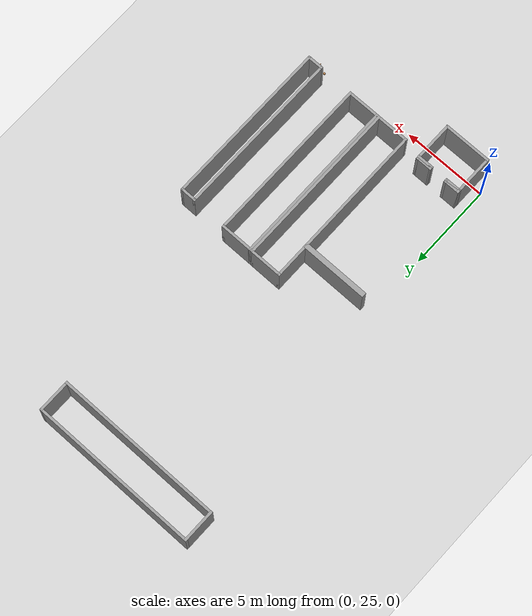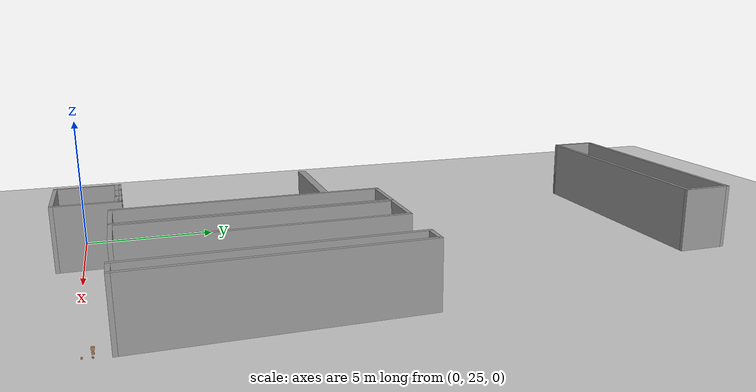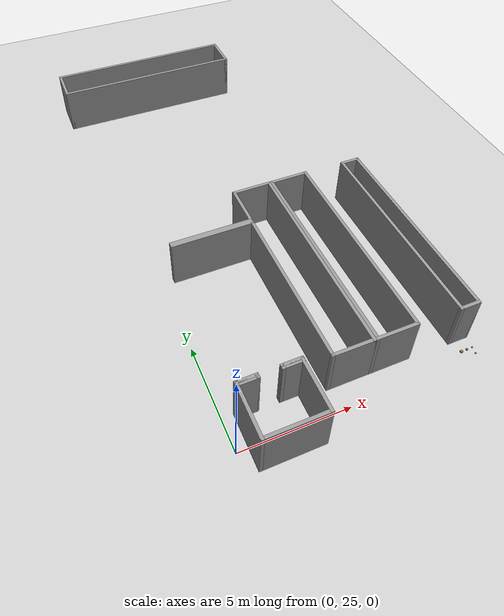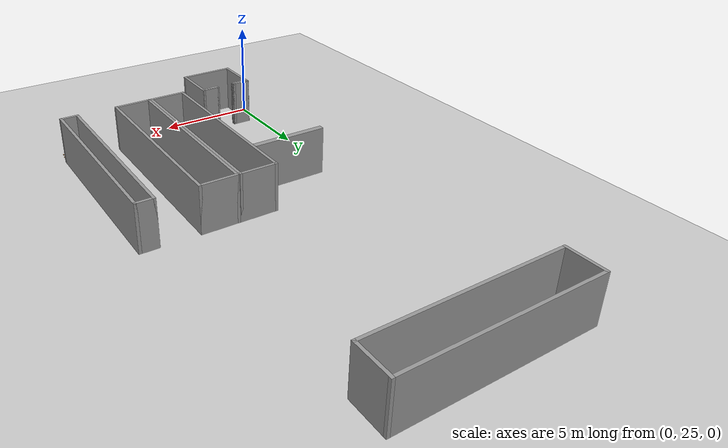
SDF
<sdf version="1.6">
 <world name="default">
  <model name="ground_plane">
   <static>1</static>
   <link name="link">
    <collision name="collision">
     <geometry><plane><normal>0 0 1</normal><size>105 105</size></plane></geometry>
     <surface>
      <contact><collide_bitmask>65535</collide_bitmask></contact>
      <friction><ode><mu>100</mu><mu2>50</mu2></ode></friction>
     </surface>
    </collision>
    <visual name="visual">
     <cast_shadows>0</cast_shadows>
     <geometry><plane><normal>0 0 1</normal><size>105 105</size></plane></geometry>
     <material>
      <script><uri>file://media/materials/scripts/gazebo.material</uri><name>Gazebo/Grey</name></script>
     </material>
    </visual>
   </link>
  </model>
  <model name="base10x2_0">
   <pose>5.40521 31.0336 0 0 -0 0</pose>
   <link name="Wall_20">
    <collision name="Wall_20_Collision">
     <geometry><box><size>2 0.15 2.5</size></box></geometry>
     <pose>0 0 1.25 0 -0 0</pose>
    </collision>
    <visual name="Wall_20_Visual">
     <pose>0 0 1.25 0 -0 0</pose>
     <geometry><box><size>2 0.15 2.5</size></box></geometry>
     <material>
      <script><uri>file://media/materials/scripts/gazebo.material</uri><name>Gazebo/Grey</name></script>
      <ambient>1 1 1 1</ambient>
     </material>
     <meta><layer>0</layer></meta>
    </visual>
    <pose>0 4.925 0 0 -0 0</pose>
   </link>
   <link name="Wall_21">
    <collision name="Wall_21_Collision">
     <geometry><box><size>10 0.15 2.5</size></box></geometry>
     <pose>0 0 1.25 0 -0 0</pose>
    </collision>
    <visual name="Wall_21_Visual">
     <pose>0 0 1.25 0 -0 0</pose>
     <geometry><box><size>10 0.15 2.5</size></box></geometry>
     <material>
      <script><uri>file://media/materials/scripts/gazebo.material</uri><name>Gazebo/Grey</name></script>
      <ambient>1 1 1 1</ambient>
     </material>
     <meta><layer>0</layer></meta>
    </visual>
    <pose>0.925 -0 0 0 -0 -1.5708</pose>
   </link>
   <link name="Wall_22">
    <collision name="Wall_22_Collision">
     <geometry><box><size>2 0.15 2.5</size></box></geometry>
     <pose>0 0 1.25 0 -0 0</pose>
    </collision>
    <visual name="Wall_22_Visual">
     <pose>0 0 1.25 0 -0 0</pose>
     <geometry><box><size>2 0.15 2.5</size></box></geometry>
     <material>
      <script><uri>file://media/materials/scripts/gazebo.material</uri><name>Gazebo/Grey</name></script>
      <ambient>1 1 1 1</ambient>
     </material>
     <meta><layer>0</layer></meta>
    </visual>
    <pose>0 -4.925 0 0 -0 3.14159</pose>
   </link>
   <link name="Wall_23">
    <collision name="Wall_23_Collision">
     <geometry><box><size>10 0.15 2.5</size></box></geometry>
     <pose>0 0 1.25 0 -0 0</pose>
    </collision>
    <visual name="Wall_23_Visual">
     <pose>0 0 1.25 0 -0 0</pose>
     <geometry><box><size>10 0.15 2.5</size></box></geometry>
     <material>
      <script><uri>file://media/materials/scripts/gazebo.material</uri><name>Gazebo/Grey</name></script>
      <ambient>1 1 1 1</ambient>
     </material>
     <meta><layer>0</layer></meta>
    </visual>
    <pose>-0.925 -0 0 0 -0 1.5708</pose>
   </link>
   <static>1</static>
  </model>
  <model name="base10x1">
   <pose>10.8397 30.9726 0 0 -0 0</pose>
   <link name="Wall_15">
    <collision name="Wall_15_Collision">
     <geometry><box><size>10 0.15 2.5</size></box></geometry>
     <pose>0 0 1.25 0 -0 0</pose>
    </collision>
    <visual name="Wall_15_Visual">
     <pose>0 0 1.25 0 -0 0</pose>
     <geometry><box><size>10 0.15 2.5</size></box></geometry>
     <material>
      <script><uri>file://media/materials/scripts/gazebo.material</uri><name>Gazebo/Grey</name></script>
      <ambient>1 1 1 1</ambient>
     </material>
     <meta><layer>0</layer></meta>
    </visual>
    <pose>-0.425 0 0 0 -0 1.5708</pose>
   </link>
   <link name="Wall_16">
    <collision name="Wall_16_Collision">
     <geometry><box><size>1 0.15 2.5</size></box></geometry>
     <pose>0 0 1.25 0 -0 0</pose>
    </collision>
    <visual name="Wall_16_Visual">
     <pose>0 0 1.25 0 -0 0</pose>
     <geometry><box><size>1 0.15 2.5</size></box></geometry>
     <material>
      <script><uri>file://media/materials/scripts/gazebo.material</uri><name>Gazebo/Grey</name></script>
      <ambient>1 1 1 1</ambient>
     </material>
     <meta><layer>0</layer></meta>
    </visual>
    <pose>0 4.925 0 0 -0 0</pose>
   </link>
   <link name="Wall_17">
    <collision name="Wall_17_Collision">
     <geometry><box><size>10 0.15 2.5</size></box></geometry>
     <pose>0 0 1.25 0 -0 0</pose>
    </collision>
    <visual name="Wall_17_Visual">
     <pose>0 0 1.25 0 -0 0</pose>
     <geometry><box><size>10 0.15 2.5</size></box></geometry>
     <material>
      <script><uri>file://media/materials/scripts/gazebo.material</uri><name>Gazebo/Grey</name></script>
      <ambient>1 1 1 1</ambient>
     </material>
     <meta><layer>0</layer></meta>
    </visual>
    <pose>0.425 0 0 0 -0 -1.5708</pose>
   </link>
   <link name="Wall_18">
    <collision name="Wall_18_Collision">
     <geometry><box><size>1 0.15 2.5</size></box></geometry>
     <pose>0 0 1.25 0 -0 0</pose>
    </collision>
    <visual name="Wall_18_Visual">
     <pose>0 0 1.25 0 -0 0</pose>
     <geometry><box><size>1 0.15 2.5</size></box></geometry>
     <material>
      <script><uri>file://media/materials/scripts/gazebo.material</uri><name>Gazebo/Grey</name></script>
      <ambient>1 1 1 1</ambient>
     </material>
     <meta><layer>0</layer></meta>
    </visual>
    <pose>0 -4.925 0 0 -0 3.14159</pose>
   </link>
   <static>1</static>
  </model>
  <model name="wood_cube_10cm_5">
   <link name="link">
    <pose>0 0 0.05 0 -0 0</pose>
    <inertial>
     <mass>0.5167</mass>
     <inertia>
      <ixx>0.000861167</ixx>
      <ixy>0</ixy>
      <ixz>0</ixz>
      <iyy>0.000861167</iyy>
      <iyz>0</iyz>
      <izz>0.000861167</izz>
     </inertia>
    </inertial>
    <collision name="collision">
     <geometry><box><size>0.1 0.1 0.1</size></box></geometry>
     <surface>
      <contact>
       <poissons_ratio>0.347</poissons_ratio>
       <elastic_modulus>8.8e+09</elastic_modulus>
       <ode><kp>100000</kp><kd>100</kd><max_vel>100</max_vel><min_depth>0.001</min_depth></ode>
      </contact>
      <friction>
       <torsional>
        <coefficient>1</coefficient>
        <use_patch_radius>0</use_patch_radius>
        <surface_radius>0.01</surface_radius>
       </torsional>
      </friction>
     </surface>
    </collision>
    <visual name="visual">
     <geometry><box><size>0.1 0.1 0.1</size></box></geometry>
     <material>
      <script><uri>file://media/materials/scripts/gazebo.material</uri><name>Gazebo/Wood</name></script>
     </material>
    </visual>
   </link>
   <pose>10.6522 25.4397 -0.001013 0 -0 0</pose>
  </model>
  <model name="wood_cube_7_5cm_5">
   <link name="link">
    <pose>0 0 0.0375 0 -0 0</pose>
    <inertial>
     <mass>0.2249</mass>
     <inertia>
      <ixx>0.000210844</ixx>
      <ixy>0</ixy>
      <ixz>0</ixz>
      <iyy>0.000210844</iyy>
      <iyz>0</iyz>
      <izz>0.000210844</izz>
     </inertia>
    </inertial>
    <collision name="collision">
     <geometry><box><size>0.075 0.075 0.075</size></box></geometry>
     <surface>
      <contact>
       <poissons_ratio>0.347</poissons_ratio>
       <elastic_modulus>8.8e+09</elastic_modulus>
       <ode><kp>100000</kp><kd>100</kd><max_vel>100</max_vel><min_depth>0.001</min_depth></ode>
      </contact>
      <friction>
       <torsional>
        <coefficient>1</coefficient>
        <use_patch_radius>0</use_patch_radius>
        <surface_radius>0.01</surface_radius>
       </torsional>
      </friction>
     </surface>
    </collision>
    <visual name="visual">
     <geometry><box><size>0.075 0.075 0.075</size></box></geometry>
     <material>
      <script><uri>file://media/materials/scripts/gazebo.material</uri><name>Gazebo/Wood</name></script>
     </material>
    </visual>
   </link>
   <pose>10.9436 25.4497 -0.001006 -0 -0 -0</pose>
  </model>
  <model name="wood_cube_5cm_4">
   <link name="link">
    <pose>0 0 0.025 0 -0 0</pose>
    <inertial>
     <mass>0.0565</mass>
     <inertia>
      <ixx>2.35417e-05</ixx>
      <ixy>0</ixy>
      <ixz>0</ixz>
      <iyy>2.35417e-05</iyy>
      <iyz>0</iyz>
      <izz>2.35417e-05</izz>
     </inertia>
    </inertial>
    <collision name="collision">
     <geometry><box><size>0.05 0.05 0.05</size></box></geometry>
     <surface>
      <contact>
       <poissons_ratio>0.347</poissons_ratio>
       <elastic_modulus>8.8e+09</elastic_modulus>
       <ode><kp>100000</kp><kd>1</kd><max_vel>1</max_vel><min_depth>0.001</min_depth></ode>
      </contact>
      <friction>
       <torsional>
        <coefficient>1</coefficient>
        <use_patch_radius>0</use_patch_radius>
        <surface_radius>0.05</surface_radius>
       </torsional>
      </friction>
     </surface>
    </collision>
    <visual name="visual">
     <geometry><box><size>0.05 0.05 0.05</size></box></geometry>
     <material>
      <script><uri>file://media/materials/scripts/gazebo.material</uri><name>Gazebo/Wood</name></script>
     </material>
    </visual>
   </link>
   <pose>11.1789 25.1545 -0.001001 0 -0 0</pose>
  </model>
  <model name="wood_cube_5cm_5">
   <link name="link">
    <pose>0 0 0.025 0 -0 0</pose>
    <inertial>
     <mass>0.0565</mass>
     <inertia>
      <ixx>2.35417e-05</ixx>
      <ixy>0</ixy>
      <ixz>0</ixz>
      <iyy>2.35417e-05</iyy>
      <iyz>0</iyz>
      <izz>2.35417e-05</izz>
     </inertia>
    </inertial>
    <collision name="collision">
     <geometry><box><size>0.05 0.05 0.05</size></box></geometry>
     <surface>
      <contact>
       <poissons_ratio>0.347</poissons_ratio>
       <elastic_modulus>8.8e+09</elastic_modulus>
       <ode><kp>100000</kp><kd>1</kd><max_vel>1</max_vel><min_depth>0.001</min_depth></ode>
      </contact>
      <friction>
       <torsional>
        <coefficient>1</coefficient>
        <use_patch_radius>0</use_patch_radius>
        <surface_radius>0.05</surface_radius>
       </torsional>
      </friction>
     </surface>
    </collision>
    <visual name="visual">
     <geometry><box><size>0.05 0.05 0.05</size></box></geometry>
     <material>
      <script><uri>file://media/materials/scripts/gazebo.material</uri><name>Gazebo/Wood</name></script>
     </material>
    </visual>
   </link>
   <pose>11.2217 25.4529 -0.001001 0 -0 0</pose>
  </model>
  <model name="base10x2_1">
   <pose>7.40132 31.0288 0 0 -0 0</pose>
   <link name="Wall_20">
    <collision name="Wall_20_Collision">
     <geometry><box><size>2 0.15 2.5</size></box></geometry>
     <pose>0 0 1.25 0 -0 0</pose>
    </collision>
    <visual name="Wall_20_Visual">
     <pose>0 0 1.25 0 -0 0</pose>
     <geometry><box><size>2 0.15 2.5</size></box></geometry>
     <material>
      <script><uri>file://media/materials/scripts/gazebo.material</uri><name>Gazebo/Grey</name></script>
      <ambient>1 1 1 1</ambient>
     </material>
     <meta><layer>0</layer></meta>
    </visual>
    <pose>0 4.925 0 0 -0 0</pose>
   </link>
   <link name="Wall_21">
    <collision name="Wall_21_Collision">
     <geometry><box><size>10 0.15 2.5</size></box></geometry>
     <pose>0 0 1.25 0 -0 0</pose>
    </collision>
    <visual name="Wall_21_Visual">
     <pose>0 0 1.25 0 -0 0</pose>
     <geometry><box><size>10 0.15 2.5</size></box></geometry>
     <material>
      <script><uri>file://media/materials/scripts/gazebo.material</uri><name>Gazebo/Grey</name></script>
      <ambient>1 1 1 1</ambient>
     </material>
     <meta><layer>0</layer></meta>
    </visual>
    <pose>0.925 -0 0 0 -0 -1.5708</pose>
   </link>
   <link name="Wall_22">
    <collision name="Wall_22_Collision">
     <geometry><box><size>2 0.15 2.5</size></box></geometry>
     <pose>0 0 1.25 0 -0 0</pose>
    </collision>
    <visual name="Wall_22_Visual">
     <pose>0 0 1.25 0 -0 0</pose>
     <geometry><box><size>2 0.15 2.5</size></box></geometry>
     <material>
      <script><uri>file://media/materials/scripts/gazebo.material</uri><name>Gazebo/Grey</name></script>
      <ambient>1 1 1 1</ambient>
     </material>
     <meta><layer>0</layer></meta>
    </visual>
    <pose>0 -4.925 0 0 -0 3.14159</pose>
   </link>
   <link name="Wall_23">
    <collision name="Wall_23_Collision">
     <geometry><box><size>10 0.15 2.5</size></box></geometry>
     <pose>0 0 1.25 0 -0 0</pose>
    </collision>
    <visual name="Wall_23_Visual">
     <pose>0 0 1.25 0 -0 0</pose>
     <geometry><box><size>10 0.15 2.5</size></box></geometry>
     <material>
      <script><uri>file://media/materials/scripts/gazebo.material</uri><name>Gazebo/Grey</name></script>
      <ambient>1 1 1 1</ambient>
     </material>
     <meta><layer>0</layer></meta>
    </visual>
    <pose>-0.925 -0 0 0 -0 1.5708</pose>
   </link>
   <static>1</static>
  </model>
  <model name="base2x10_0">
   <pose>3.694 48.2896 0 0 -0 0</pose>
   <link name="Wall_10">
    <collision name="Wall_10_Collision">
     <geometry><box><size>2 0.15 2.5</size></box></geometry>
     <pose>0 0 1.25 0 -0 0</pose>
    </collision>
    <visual name="Wall_10_Visual">
     <pose>0 0 1.25 0 -0 0</pose>
     <geometry><box><size>2 0.15 2.5</size></box></geometry>
     <material>
      <script><uri>file://media/materials/scripts/gazebo.material</uri><name>Gazebo/Grey</name></script>
      <ambient>1 1 1 1</ambient>
     </material>
     <meta><layer>0</layer></meta>
    </visual>
    <pose>-4.925 0 0 0 -0 -1.5708</pose>
   </link>
   <link name="Wall_11">
    <collision name="Wall_11_Collision">
     <geometry><box><size>10 0.15 2.5</size></box></geometry>
     <pose>0 0 1.25 0 -0 0</pose>
    </collision>
    <visual name="Wall_11_Visual">
     <pose>0 0 1.25 0 -0 0</pose>
     <geometry><box><size>10 0.15 2.5</size></box></geometry>
     <material>
      <script><uri>file://media/materials/scripts/gazebo.material</uri><name>Gazebo/Grey</name></script>
      <ambient>1 1 1 1</ambient>
     </material>
     <meta><layer>0</layer></meta>
    </visual>
    <pose>0 -0.925 0 0 -0 0</pose>
   </link>
   <link name="Wall_12">
    <collision name="Wall_12_Collision">
     <geometry><box><size>2 0.15 2.5</size></box></geometry>
     <pose>0 0 1.25 0 -0 0</pose>
    </collision>
    <visual name="Wall_12_Visual">
     <pose>0 0 1.25 0 -0 0</pose>
     <geometry><box><size>2 0.15 2.5</size></box></geometry>
     <material>
      <script><uri>file://media/materials/scripts/gazebo.material</uri><name>Gazebo/Grey</name></script>
      <ambient>1 1 1 1</ambient>
     </material>
     <meta><layer>0</layer></meta>
    </visual>
    <pose>4.925 0 0 0 -0 1.5708</pose>
   </link>
   <link name="Wall_13">
    <collision name="Wall_13_Collision">
     <geometry><box><size>10 0.15 2.5</size></box></geometry>
     <pose>0 0 1.25 0 -0 0</pose>
    </collision>
    <visual name="Wall_13_Visual">
     <pose>0 0 1.25 0 -0 0</pose>
     <geometry><box><size>10 0.15 2.5</size></box></geometry>
     <material>
      <script><uri>file://media/materials/scripts/gazebo.material</uri><name>Gazebo/Grey</name></script>
      <ambient>1 1 1 1</ambient>
     </material>
     <meta><layer>0</layer></meta>
    </visual>
    <pose>0 0.925 0 0 -0 3.14159</pose>
   </link>
   <static>1</static>
  </model>
  <model name="elevator_90cm_0">
   <pose>1.96571 25.2774 0 0 -0 0</pose>
   <link name="Wall_22">
    <collision name="Wall_22_Collision">
     <geometry><box><size>1 0.15 2.5</size></box></geometry>
     <pose>0 0 1.25 0 -0 0</pose>
    </collision>
    <visual name="Wall_22_Visual">
     <pose>0 0 1.25 0 -0 0</pose>
     <geometry><box><size>1 0.15 2.5</size></box></geometry>
     <material>
      <script><uri>file://media/materials/scripts/gazebo.material</uri><name>Gazebo/Grey</name></script>
      <ambient>1 1 1 1</ambient>
     </material>
     <meta><layer>0</layer></meta>
    </visual>
    <pose>-0.95 1.175 0 0 -0 3.14159</pose>
   </link>
   <link name="Wall_23">
    <collision name="Wall_23_Collision">
     <geometry><box><size>2.5 0.15 2.5</size></box></geometry>
     <pose>0 0 1.25 0 -0 0</pose>
    </collision>
    <visual name="Wall_23_Visual">
     <pose>0 0 1.25 0 -0 0</pose>
     <geometry><box><size>2.5 0.15 2.5</size></box></geometry>
     <material>
      <script><uri>file://media/materials/scripts/gazebo.material</uri><name>Gazebo/Grey</name></script>
      <ambient>1 1 1 1</ambient>
     </material>
     <meta><layer>0</layer></meta>
    </visual>
    <pose>-1.375 0 0 0 -0 -1.5708</pose>
   </link>
   <link name="Wall_25">
    <collision name="Wall_25_Collision">
     <geometry><box><size>1 0.15 2.5</size></box></geometry>
     <pose>0 0 1.25 0 -0 0</pose>
    </collision>
    <visual name="Wall_25_Visual">
     <pose>0 0 1.25 0 -0 0</pose>
     <geometry><box><size>1 0.15 2.5</size></box></geometry>
     <material>
      <script><uri>file://media/materials/scripts/gazebo.material</uri><name>Gazebo/Grey</name></script>
      <ambient>1 1 1 1</ambient>
     </material>
     <meta><layer>0</layer></meta>
    </visual>
    <pose>0.95 1.175 0 0 -0 0</pose>
   </link>
   <link name="Wall_26">
    <collision name="Wall_26_Collision">
     <geometry><box><size>2.5 0.15 2.5</size></box></geometry>
     <pose>0 0 1.25 0 -0 0</pose>
    </collision>
    <visual name="Wall_26_Visual">
     <pose>0 0 1.25 0 -0 0</pose>
     <geometry><box><size>2.5 0.15 2.5</size></box></geometry>
     <material>
      <script><uri>file://media/materials/scripts/gazebo.material</uri><name>Gazebo/Grey</name></script>
      <ambient>1 1 1 1</ambient>
     </material>
     <meta><layer>0</layer></meta>
    </visual>
    <pose>1.375 0 0 0 -0 -1.5708</pose>
   </link>
   <link name="Wall_27">
    <collision name="Wall_27_Collision">
     <geometry><box><size>2.9 0.15 2.5</size></box></geometry>
     <pose>0 0 1.25 0 -0 0</pose>
    </collision>
    <visual name="Wall_27_Visual">
     <pose>0 0 1.25 0 -0 0</pose>
     <geometry><box><size>2.9 0.15 2.5</size></box></geometry>
     <material>
      <script><uri>file://media/materials/scripts/gazebo.material</uri><name>Gazebo/Grey</name></script>
      <ambient>1 1 1 1</ambient>
     </material>
     <meta><layer>0</layer></meta>
    </visual>
    <pose>0 -1.175 0 0 -0 3.14159</pose>
   </link>
   <link name="Wall_29">
    <collision name="Wall_29_Collision">
     <geometry><box><size>0.25 0.15 2.5</size></box></geometry>
     <pose>0 0 1.25 0 -0 0</pose>
    </collision>
    <visual name="Wall_29_Visual">
     <pose>0 0 1.25 0 -0 0</pose>
     <geometry><box><size>0.25 0.15 2.5</size></box></geometry>
     <material>
      <script><uri>file://media/materials/scripts/gazebo.material</uri><name>Gazebo/Grey</name></script>
      <ambient>1 1 1 1</ambient>
     </material>
     <meta><layer>0</layer></meta>
    </visual>
    <pose>-0.525 1.125 0 0 -0 -1.5708</pose>
   </link>
   <link name="Wall_31">
    <collision name="Wall_31_Collision">
     <geometry><box><size>0.25 0.15 2.5</size></box></geometry>
     <pose>0 0 1.25 0 -0 0</pose>
    </collision>
    <visual name="Wall_31_Visual">
     <pose>0 0 1.25 0 -0 0</pose>
     <geometry><box><size>0.25 0.15 2.5</size></box></geometry>
     <material>
      <script><uri>file://media/materials/scripts/gazebo.material</uri><name>Gazebo/Grey</name></script>
      <ambient>1 1 1 1</ambient>
     </material>
     <meta><layer>0</layer></meta>
    </visual>
    <pose>-1.375 1.125 0 0 -0 -1.5708</pose>
   </link>
   <link name="Wall_32">
    <collision name="Wall_32_Collision">
     <geometry><box><size>1 0.15 2.5</size></box></geometry>
     <pose>0 0 1.25 0 -0 0</pose>
    </collision>
    <visual name="Wall_32_Visual">
     <pose>0 0 1.25 0 -0 0</pose>
     <geometry><box><size>1 0.15 2.5</size></box></geometry>
     <material>
      <script><uri>file://media/materials/scripts/gazebo.material</uri><name>Gazebo/Grey</name></script>
      <ambient>1 1 1 1</ambient>
     </material>
     <meta><layer>0</layer></meta>
    </visual>
    <pose>-0.95 1.075 0 0 -0 0</pose>
   </link>
   <link name="Wall_34">
    <collision name="Wall_34_Collision">
     <geometry><box><size>0.25 0.15 2.5</size></box></geometry>
     <pose>0 0 1.25 0 -0 0</pose>
    </collision>
    <visual name="Wall_34_Visual">
     <pose>0 0 1.25 0 -0 0</pose>
     <geometry><box><size>0.25 0.15 2.5</size></box></geometry>
     <material>
      <script><uri>file://media/materials/scripts/gazebo.material</uri><name>Gazebo/Grey</name></script>
      <ambient>1 1 1 1</ambient>
     </material>
     <meta><layer>0</layer></meta>
    </visual>
    <pose>0.525 1.125 0 0 -0 -1.5708</pose>
   </link>
   <link name="Wall_36">
    <collision name="Wall_36_Collision">
     <geometry><box><size>0.25 0.15 2.5</size></box></geometry>
     <pose>0 0 1.25 0 -0 0</pose>
    </collision>
    <visual name="Wall_36_Visual">
     <pose>0 0 1.25 0 -0 0</pose>
     <geometry><box><size>0.25 0.15 2.5</size></box></geometry>
     <material>
      <script><uri>file://media/materials/scripts/gazebo.material</uri><name>Gazebo/Grey</name></script>
      <ambient>1 1 1 1</ambient>
     </material>
     <meta><layer>0</layer></meta>
    </visual>
    <pose>1.375 1.125 0 0 -0 -1.5708</pose>
   </link>
   <link name="Wall_37">
    <collision name="Wall_37_Collision">
     <geometry><box><size>1 0.15 2.5</size></box></geometry>
     <pose>0 0 1.25 0 -0 0</pose>
    </collision>
    <visual name="Wall_37_Visual">
     <pose>0 0 1.25 0 -0 0</pose>
     <geometry><box><size>1 0.15 2.5</size></box></geometry>
     <material>
      <script><uri>file://media/materials/scripts/gazebo.material</uri><name>Gazebo/Grey</name></script>
      <ambient>1 1 1 1</ambient>
     </material>
     <meta><layer>0</layer></meta>
    </visual>
    <pose>0.95 1.075 0 0 -0 3.14159</pose>
   </link>
   <static>1</static>
  </model>
  <model name="wall_4mx30cm">
   <pose>2.51286 33.8788 0 0 -0 0</pose>
   <link name="Wall_0">
    <collision name="Wall_0_Collision">
     <geometry><box><size>4 0.3 2.5</size></box></geometry>
     <pose>0 0 1.25 0 -0 0</pose>
    </collision>
    <visual name="Wall_0_Visual">
     <pose>0 0 1.25 0 -0 0</pose>
     <geometry><box><size>4 0.3 2.5</size></box></geometry>
     <material>
      <script><uri>file://media/materials/scripts/gazebo.material</uri><name>Gazebo/Grey</name></script>
      <ambient>1 1 1 1</ambient>
     </material>
     <meta><layer>0</layer></meta>
    </visual>
   </link>
   <static>1</static>
  </model>
 </world>
</sdf>
